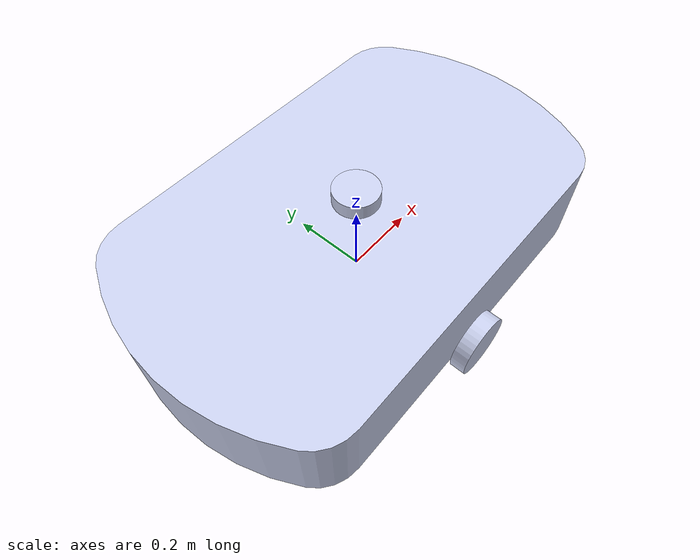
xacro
<?xml version="1.0"?>
<robot xmlns:xacro="http://www.ros.org/wiki/xacro" name="my_bot">

    <!-- base_footprint -->
    <link name="base_footprint"/>

    <!-- base_link -->
  <link
    name="base_link">
    <inertial>
      <origin
        xyz="-1.1536E-16 -8.6736E-17 0.13512"
        rpy="0 0 0" />
      <mass
        value="201.67" />
      <inertia
        ixx="9.5313"
        ixy="-9.2157E-16"
        ixz="-5.6579E-16"
        iyy="22.658"
        iyz="-4.198E-17"
        izz="30.077" />
    </inertial>
    <visual>
      <origin
        xyz="0 0 0"
        rpy="0 0 0" />
      <geometry>
            <mesh filename="file://$(find my_bot)/meshes/base_link.STL"/>
      </geometry>
      <material
        name="">
        <color
          rgba="0.79216 0.81961 0.93333 1" />
      </material>
    </visual>
    <collision>
      <origin
        xyz="0 0 0"
        rpy="0 0 0" />
      <geometry>
            <mesh filename="file://$(find my_bot)/meshes/base_link.STL"/>
      </geometry>
    </collision>
  </link>

    <!-- base_footprint -> base_link joint -->
    <joint name="base_footprint_joint" type="fixed">
        <origin xyz="0 0 0" rpy="0 0 0"/>
        <parent link="base_footprint"/>
        <child link="base_link"/>
    </joint>

   <link
    name="left_wheel">
    <inertial>
      <origin
        xyz="6.0715E-18 -0.02 0"
        rpy="0 0 0" />
      <mass
        value="0.80425" />
      <inertia
        ixx="0.001394"
        ixy="6.1901E-35"
        ixz="7.1778E-51"
        iyy="0.0025736"
        iyz="2.4867E-36"
        izz="0.001394" />
    </inertial>
    <visual>
      <origin
        xyz="0 0 0"
        rpy="0 0 0" />
      <geometry>
        <mesh filename="file://$(find my_bot)/meshes/left_wheel.STL"/>
      </geometry>
      <material
        name="">
        <color
          rgba="0.79216 0.81961 0.93333 1" />
      </material>
    </visual>
    <collision>
      <origin
        xyz="0 0 0"
        rpy="0 0 0" />
      <geometry>
        <mesh filename="file://$(find my_bot)/meshes/left_wheel.STL"/>

      </geometry>
    </collision>
  </link>
  <joint
    name="leftwheel"
    type="continuous">
    <origin
      xyz="0 0.406 0.018995"
      rpy="0 0 0" />
    <parent
      link="base_link" />
    <child
      link="left_wheel" />
    <axis
      xyz="0 1 0" />
    <dynamics
      friction="0.1" />
  </joint>

    <link
    name="right_wheel">
    <inertial>
      <origin
        xyz="6.9389E-18 0.02 0"
        rpy="0 0 0" />
      <mass
        value="0.80425" />
      <inertia
        ixx="0.001394"
        ixy="6.1901E-35"
        ixz="7.1778E-51"
        iyy="0.0025736"
        iyz="2.4867E-36"
        izz="0.001394" />
    </inertial>
    <visual>
      <origin
        xyz="0 0 0"
        rpy="0 0 0" />
      <geometry>
        <mesh filename="file://$(find my_bot)/meshes/right_wheel.STL"/>

      </geometry>
      <material
        name="">
        <color
          rgba="0.79216 0.81961 0.93333 1" />
      </material>
    </visual>
    <collision>
      <origin
        xyz="0 0 0"
        rpy="0 0 0" />
      <geometry>
        <mesh filename="file://$(find my_bot)/meshes/right_wheel.STL"/>

      </geometry>
    </collision>
  </link>
  <joint
    name="rightwheel"
    type="continuous">
    <origin
      xyz="0 -0.406 0.018995"
      rpy="0 0 0" />
    <parent
      link="base_link" />
    <child
      link="right_wheel" />
    <axis
      xyz="0 1 0" />
    <dynamics
      friction="0.1" />
  </joint>

    <link
    name="lidar_link">
    <inertial>
      <origin
        xyz="-8.6736E-18 0 -0.02"
        rpy="0 0 0" />
      <mass
        value="0.45239" />
      <inertia
        ixx="0.00046747"
        ixy="0"
        ixz="-1.4694E-36"
        iyy="0.00046747"
        iyz="-1.0491E-36"
        izz="0.0008143" />
    </inertial>
    <visual>
      <origin
        xyz="0 0 0"
        rpy="0 0 0" />
      <geometry>
        <mesh filename="file://$(find my_bot)/meshes/lidar_link.STL"/>

      </geometry>
       <material
        name="">
        <color
          rgba="0.79216 0.81961 0.93333 1" />
      </material>
    </visual>
    <collision>
      <origin
        xyz="0 0 0"
        rpy="0 0 0" />
      <geometry>
        <mesh filename="file://$(find my_bot)/meshes/lidar_link.STL"/>

      </geometry>
    </collision>
  </link>
  <joint
    name="lidar_joint"
    type="fixed">
    <origin
      xyz="0 0 0.29909"
      rpy="0 0 0" />
    <parent
      link="base_link" />
    <child
      link="lidar_link" />
    <axis
      xyz="0 0 1" />
  </joint>

  <joint name="camera_joint" type="fixed">
        <parent link="base_link"/>
        <child link="camera_link"/>
        <origin xyz="0.6 0 0.2" rpy="0 ${pi/2} 0"/>
  </joint>

  <link name="camera_link">
      <visual>
          <geometry>
              <box size="0.010 0.03 0.03"/>
          </geometry>
            <material
            name="">
            <color
              rgba="0.79216 0.81961 0.93333 1" />
          </material>
      </visual>
  </link>

  <joint name="camera_optical_joint" type="fixed">
      <parent link="camera_link"/>
      <child link="camera_link_optical"/>
      <origin xyz="0 0 0" rpy="${-pi/2} 0 ${-pi/2}"/>
  </joint>

  <link name="camera_link_optical"></link>
</robot>
